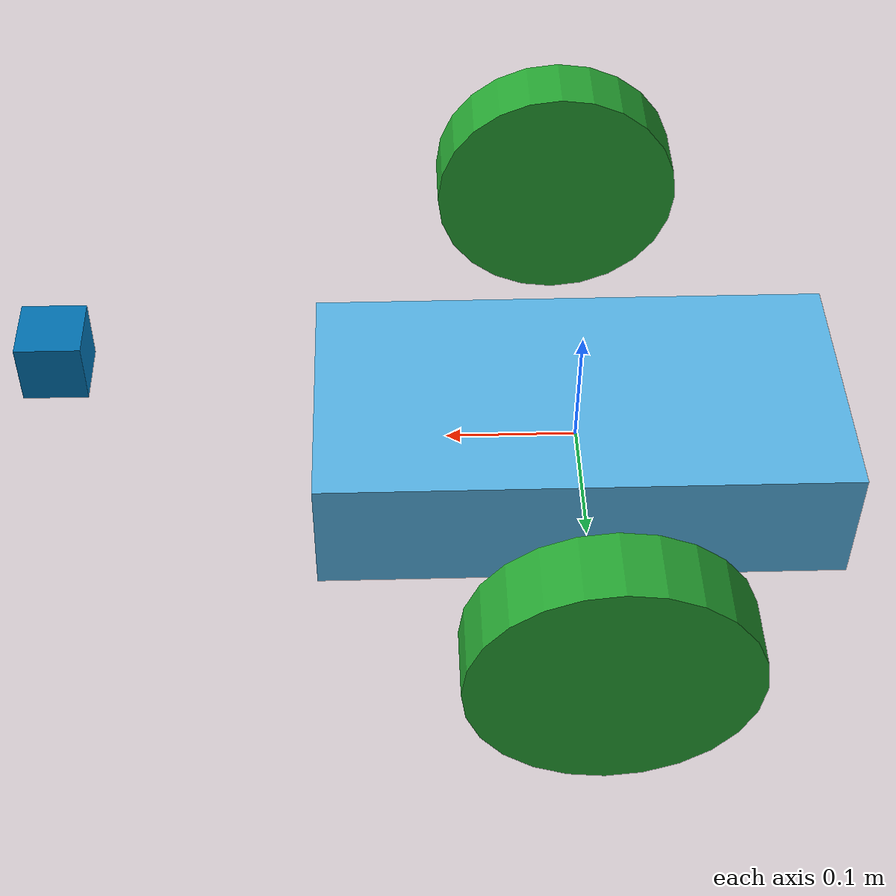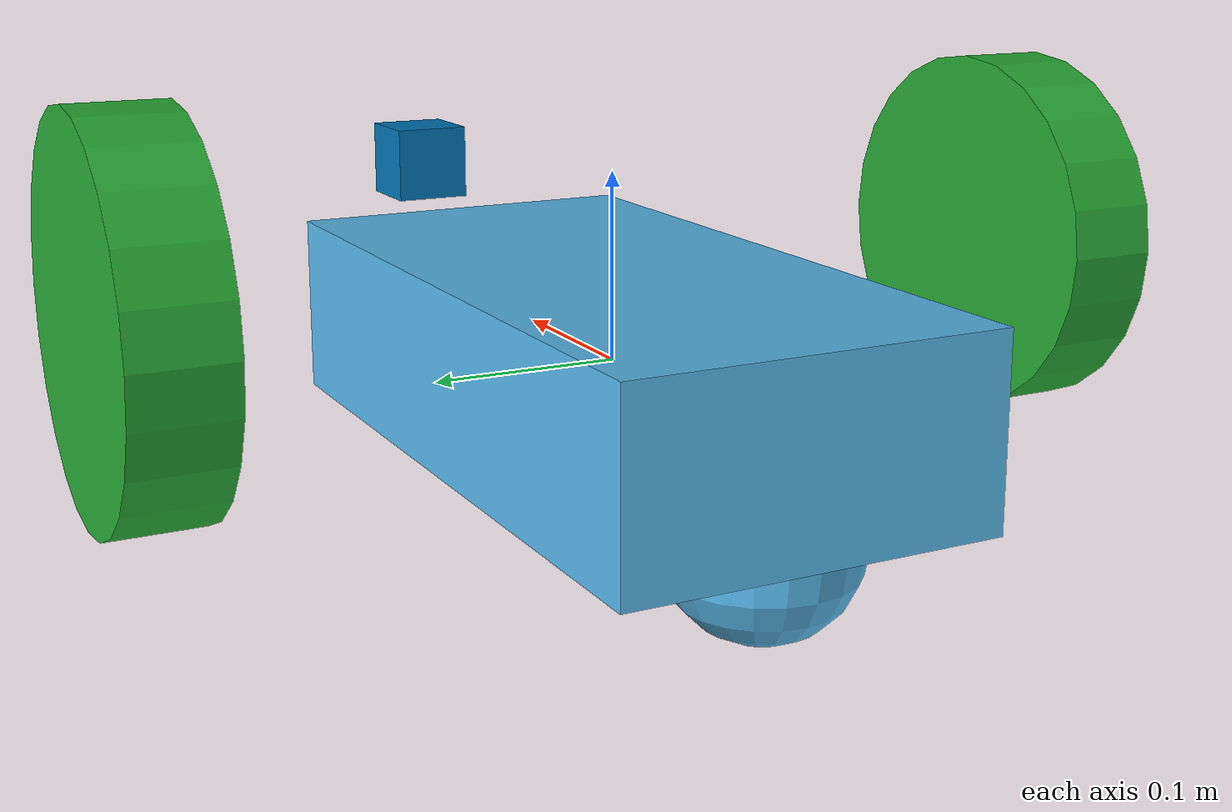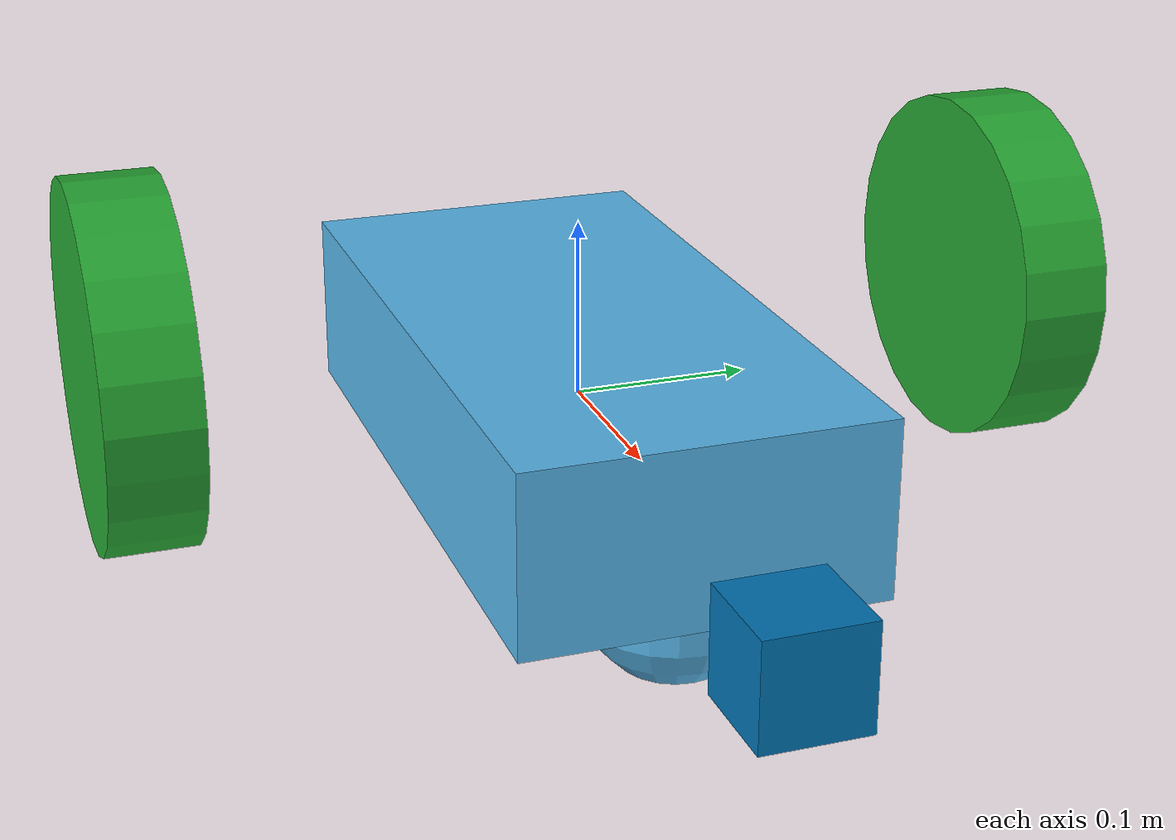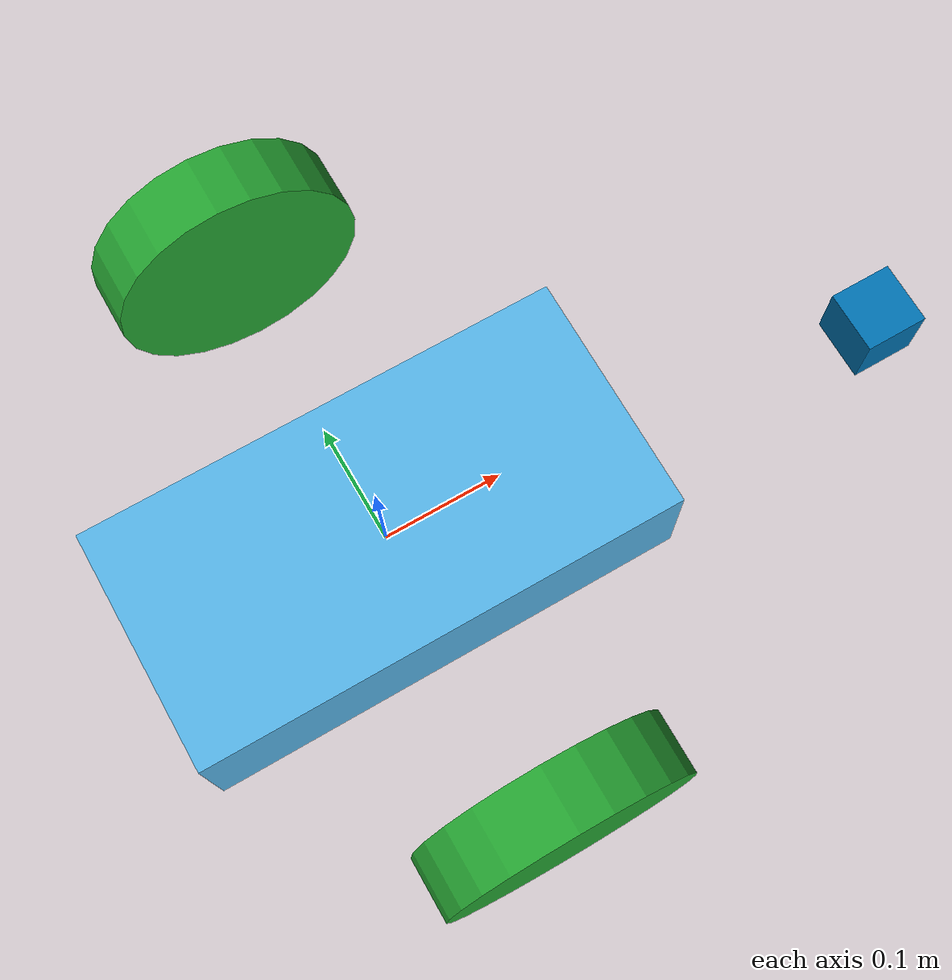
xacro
<?xml version='1.0'?>

<robot name="my_robot" xmlns:xacro="http://www.ros.org/wiki/xacro">

  <link name="robot_footprint"></link>

  <joint name="robot_footprint_joint" type="fixed">
    <origin xyz="0 0 0" rpy="0 0 0" />
    <parent link="robot_footprint"/>
    <child link="chassis" />
  </joint>

  <joint type="continuous" name="left_wheel_hinge">
    <origin xyz="0 0.15 0" rpy="0 0 0"/>
    <child link="left_wheel"/>
    <parent link="chassis"/>
    <axis xyz="0 1 0" rpy="0 0 0"/>
    <limit effort="10000" velocity="1000"/>
    <dynamics damping="1.0" friction="1.0"/>
  </joint>

  <joint type="continuous" name="right_wheel_hinge">
    <origin xyz="0 -0.15 0" rpy="0 0 0"/>
    <child link="right_wheel"/>
    <parent link="chassis"/>
    <axis xyz="0 1 0" rpy="0 0 0"/>
    <limit effort="10000" velocity="1000"/>
    <dynamics damping="1.0" friction="1.0"/>
  </joint>

  <joint type="fixed" name="camera_joint">
    <origin xyz="0.2 0 0" rpy="0 0 0"/>
    <child link="camera"/>
    <parent link="chassis"/>
    <axis xyz="0 1 0" rpy="0 0 0"/>
    <limit effort="10000" velocity="1000"/>
    <dynamics damping="1.0" friction="1.0"/>
  </joint>

  <link name='chassis'>
    <pose>0 0 0.1 0 0 0</pose>

    <inertial>
      <mass value="15.0"/>
      <origin xyz="0.0 0 0" rpy=" 0 0 0"/>
      <inertia
          ixx="0.1" ixy="0" ixz="0"
          iyy="0.1" iyz="0"
          izz="0.1"
      />
    </inertial>

    <collision name='collision'>
      <origin xyz="0 0 0" rpy=" 0 0 0"/>
      <geometry>
        <box size=".4 .2 .1"/>
      </geometry>
    </collision>

    <visual name='chassis_visual'>
      <origin xyz="0 0 0" rpy=" 0 0 0"/>
      <geometry>
        <box size=".4 .2 .1"/>
      </geometry>
    </visual>

    <collision name='back_caster_collision'>
      <origin xyz="-0.15 0 -0.05" rpy=" 0 0 0"/>
      <geometry>
        <sphere radius="0.0499"/>
      </geometry>
    </collision>

    <visual name='back_caster_visual'>
      <origin xyz="-0.15 0 -0.05" rpy=" 0 0 0"/>
      <geometry>
        <sphere radius="0.05"/>
      </geometry>
    </visual>

    <collision name='front_caster_collision'>
      <origin xyz="0.15 0 -0.05" rpy=" 0 0 0"/>
      <geometry>
        <sphere radius="0.0499"/>
      </geometry>
    </collision>

    <visual name='front_caster_visual'>
      <origin xyz="0.15 0 -0.05" rpy=" 0 0 0"/>
      <geometry>
        <sphere radius="0.05"/>
      </geometry>
    </visual>

  </link>

<link name='left_wheel'>
    <pose>0 0 0.1 0 0 0</pose>

    <inertial>
      <mass value="5.0"/>
      <origin xyz="0.0 0 0" rpy=" 0 1.5707 1.5707"/>
      <inertia
          ixx="0.1" ixy="0" ixz="0"
          iyy="0.1" iyz="0"
          izz="0.1"
      />
    </inertial>

    <collision name='left_wheel_collision'>
      <origin xyz="0 0.1 0.05" rpy=" 0 1.5707 1.5707"/>
      <geometry>
        <cylinder length="0.05" radius="0.1"/>
      </geometry>
    </collision>

    <visual name='left_wheel_visual'>
      <origin xyz="0 0.1 0.05" rpy=" 0 1.5707 1.5707"/>
      <geometry>
        <cylinder length="0.05" radius="0.1"/>
      </geometry>
    </visual>
</link>

<link name='right_wheel'>
    <pose>0 0 0.1 0 0 0</pose>

    <inertial>
      <mass value="5.0"/>
      <origin xyz="0.0 0 0" rpy=" 0 1.5707 1.5707"/>
      <inertia
          ixx="0.1" ixy="0" ixz="0"
          iyy="0.1" iyz="0"
          izz="0.1"
      />
    </inertial>

    <collision name='right_wheel_collision'>
      <origin xyz="0 -0.1 0.05" rpy=" 0 1.5707 1.5707"/>
      <geometry>
        <cylinder length="0.05" radius="0.1"/>
      </geometry>
    </collision>

    <visual name='right_wheel_visual'>
      <origin xyz="0 -0.1 0.05" rpy=" 0 1.5707 1.5707"/>
      <geometry>
        <cylinder length="0.05" radius="0.1"/>
      </geometry>
    </visual>
</link>

<link name='camera'>
    <pose>0 0 0.1 0 0 0</pose>

    <inertial>
      <mass value="0.1"/>
      <origin xyz="0.0 0 0" rpy=" 0 0 0"/>
      <inertia
          ixx="1e-6" ixy="0" ixz="0"
          iyy="1e-6" iyz="0"
          izz="1e-6"
      />
    </inertial>

    <collision name='camera_collision'>
      <origin xyz="0.2 -0.05 0.05" rpy=" 0 1.5707 1.5707"/>
      <geometry>
        <cylinder length="0.05" radius="0.1"/>
      </geometry>
    </collision>

    <visual name='camera_visual'>
      <origin xyz="0.2 -0.05 0.05" rpy=" 0 1.5707 1.5707"/>
      <geometry>
        <box size=".05 .05 .05"/>
      </geometry>
    </visual>
</link>

<gazebo reference="left_wheel">
    <material>Gazebo/Green</material>
</gazebo>

<gazebo reference="right_wheel">
    <material>Gazebo/Green</material>
</gazebo>

</robot>
